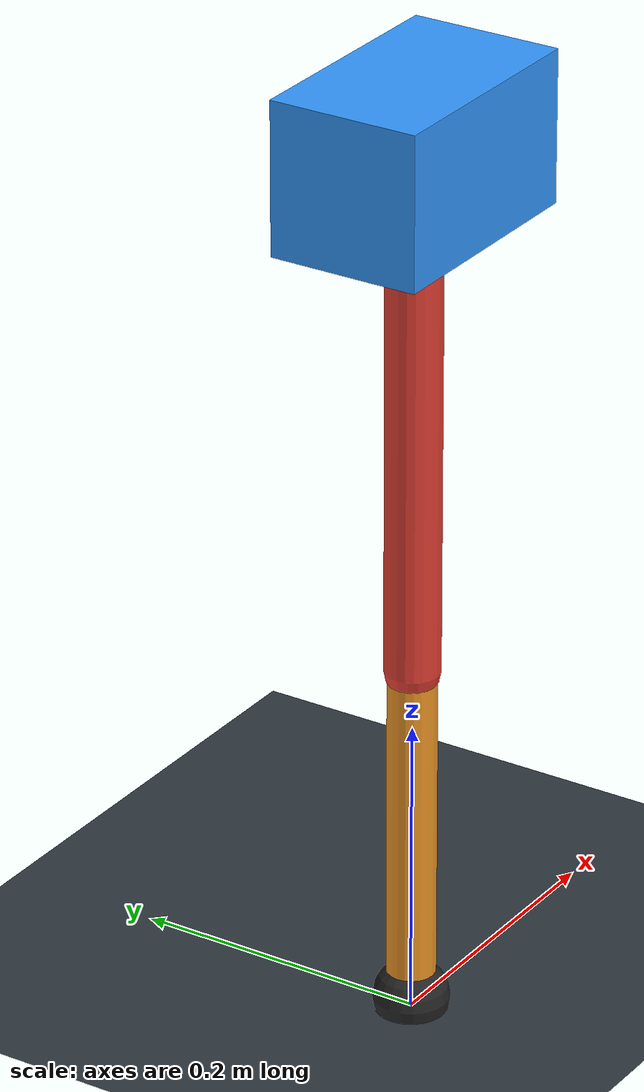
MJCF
<mujoco model="single_axis_two_bar">
  <compiler angle="radian" inertiafromgeom="true"/>
  <option timestep="0.001" integrator="implicitfast" gravity="0 0 -9.81"/>
  <default>
    <joint damping="0.08"/>
    <geom friction="1.2 0.01 0.0001" condim="3"/>
  </default>
  <worldbody>
    <geom name="floor" type="plane" size="5 5 0.1" rgba="0.18 0.22 0.25 1"/>
    <body name="carriage" pos="0 0 0.5872833010403699">
      <joint name="pole_slide" type="slide" axis="0 0 1"/>
      <geom name="payload" type="box" size="0.08 0.05 0.05" mass="2.573267666936524" rgba="0.2 0.6 1 1"/>
      <body name="thigh" pos="0 0 0">
        <joint name="hip" type="hinge" axis="0 1 0"/>
        <geom name="thigh_link" type="capsule" fromto="0 0 0 0 0 -0.346773895170032" size="0.018" mass="0.24708098252139132" rgba="0.9 0.25 0.2 1"/>
        <body name="shank" pos="0 0 -0.346773895170032">
          <joint name="knee" type="hinge" axis="0 1 0"/>
          <geom name="shank_link" type="capsule" fromto="0 0 0 0 0 -0.23289961105715346" size="0.016" mass="0.16594405037505944" rgba="0.95 0.6 0.15 1"/>
          <geom name="foot" type="sphere" pos="0 0 -0.23289961105715346" size="0.025" mass="0.03" rgba="0.15 0.15 0.15 1"/>
          <site name="toe" pos="0 0 -0.23289961105715346" size="0.008"/>
        </body>
      </body>
    </body>
  </worldbody>
  <actuator>
    <motor name="hip_motor" joint="hip" ctrlrange="-29.94333906096121 29.94333906096121"/>
    <motor name="knee_motor" joint="knee" ctrlrange="-105.36196330000145 105.36196330000145"/>
  </actuator>
</mujoco>
